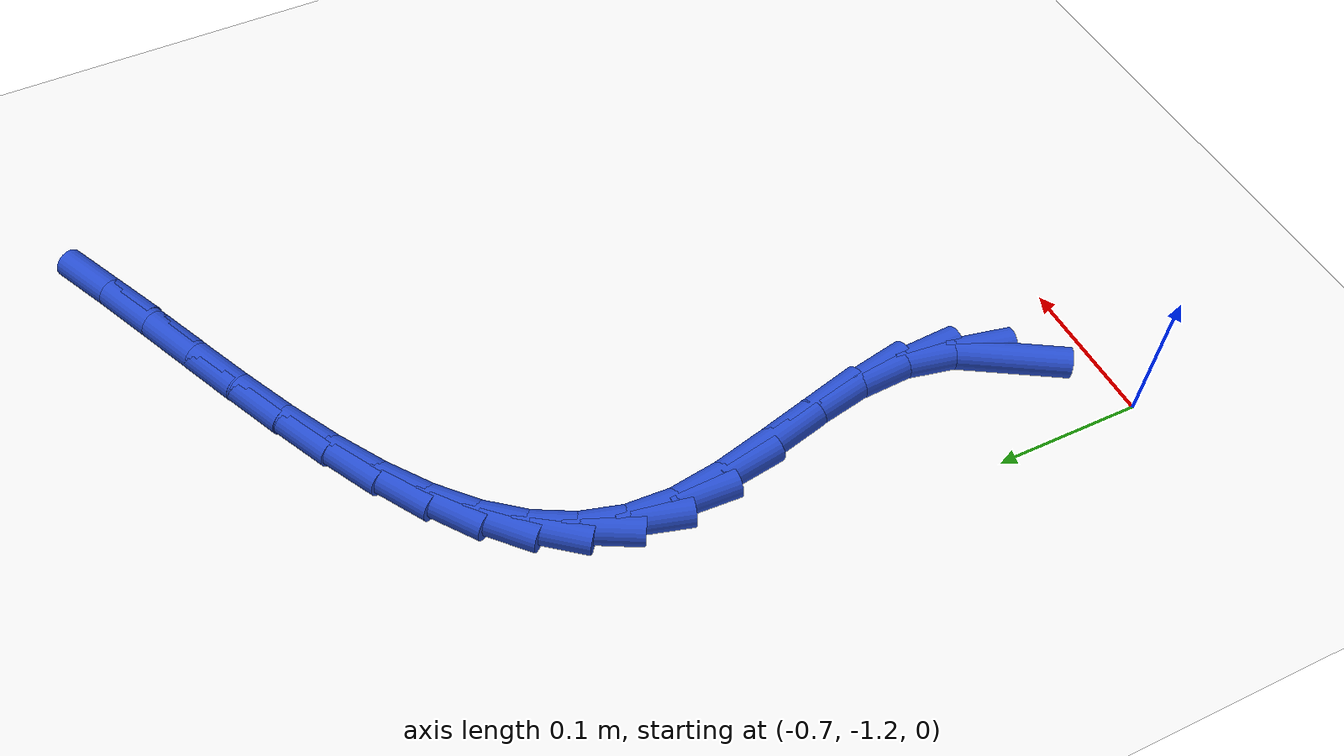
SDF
<sdf version="1.6">
 <world name="default">
  <model name="ground_plane">
   <static>1</static>
   <link name="link">
    <collision name="collision">
     <geometry><plane><normal>0 0 1</normal><size>100 100</size></plane></geometry>
     <surface><friction><ode><mu>100</mu><mu2>50</mu2></ode></friction></surface>
    </collision>
    <visual name="visual">
     <cast_shadows>0</cast_shadows>
     <geometry><plane><normal>0 0 1</normal><size>100 100</size></plane></geometry>
     <material>
      <script><uri>file://media/materials/scripts/gazebo.material</uri><name>Gazebo/WhiteGlow</name></script>
     </material>
    </visual>
   </link>
  </model>
  <model name="line">
   <link name="link_190">
    <pose>-0.6382624683775024 -1.1442281127790899 0.01 0 1.57 1.0272276006651477</pose>
    <collision name="collision">
     <geometry><cylinder><radius>0.01</radius><length>0.08</length></cylinder></geometry>
    </collision>
    <visual name="visual">
     <material>
      <script><name>Gazebo/Blue</name><uri>file://media/materials/scripts/gazebo.material</uri></script>
     </material>
     <geometry><cylinder><radius>0.01</radius><length>0.08</length></cylinder></geometry>
    </visual>
   </link>
   <link name="link_191">
    <pose>-0.6206248557993498 -1.1150408328921637 0.01 0 1.57 1.3618944006648412</pose>
    <collision name="collision">
     <geometry><cylinder><radius>0.01</radius><length>0.08</length></cylinder></geometry>
    </collision>
    <visual name="visual">
     <material>
      <script><name>Gazebo/Blue</name><uri>file://media/materials/scripts/gazebo.material</uri></script>
     </material>
     <geometry><cylinder><radius>0.01</radius><length>0.08</length></cylinder></geometry>
    </visual>
   </link>
   <link name="link_192">
    <pose>-0.6136718146611201 -1.0822426573544506 0.01 0 1.57 -1.5278581862993117</pose>
    <collision name="collision">
     <geometry><cylinder><radius>0.01</radius><length>0.08</length></cylinder></geometry>
    </collision>
    <visual name="visual">
     <material>
      <script><name>Gazebo/Blue</name><uri>file://media/materials/scripts/gazebo.material</uri></script>
     </material>
     <geometry><cylinder><radius>0.01</radius><length>0.08</length></cylinder></geometry>
    </visual>
   </link>
   <link name="link_193">
    <pose>-0.6151903316750111 -1.0468991687949551 0.01 0 1.57 -1.3845350236376937</pose>
    <collision name="collision">
     <geometry><cylinder><radius>0.01</radius><length>0.08</length></cylinder></geometry>
    </collision>
    <visual name="visual">
     <material>
      <script><name>Gazebo/Blue</name><uri>file://media/materials/scripts/gazebo.material</uri></script>
     </material>
     <geometry><cylinder><radius>0.01</radius><length>0.08</length></cylinder></geometry>
    </visual>
   </link>
   <link name="link_194">
    <pose>-0.6221207310766012 -1.0101225156597786 0.01 0 1.57 -1.3256099250226439</pose>
    <collision name="collision">
     <geometry><cylinder><radius>0.01</radius><length>0.08</length></cylinder></geometry>
    </collision>
    <visual name="visual">
     <material>
      <script><name>Gazebo/Blue</name><uri>file://media/materials/scripts/gazebo.material</uri></script>
     </material>
     <geometry><cylinder><radius>0.01</radius><length>0.08</length></cylinder></geometry>
    </visual>
   </link>
   <link name="link_195">
    <pose>-0.6314033371014685 -0.9730248463950224 0.01 0 1.57 -1.3388596592594153</pose>
    <collision name="collision">
     <geometry><cylinder><radius>0.01</radius><length>0.08</length></cylinder></geometry>
    </collision>
    <visual name="visual">
     <material>
      <script><name>Gazebo/Blue</name><uri>file://media/materials/scripts/gazebo.material</uri></script>
     </material>
     <geometry><cylinder><radius>0.01</radius><length>0.08</length></cylinder></geometry>
    </visual>
   </link>
   <link name="link_196">
    <pose>-0.6399784739851909 -0.9367183094467877 0.01 0 1.57 -1.4319416841257835</pose>
    <collision name="collision">
     <geometry><cylinder><radius>0.01</radius><length>0.08</length></cylinder></geometry>
    </collision>
    <visual name="visual">
     <material>
      <script><name>Gazebo/Blue</name><uri>file://media/materials/scripts/gazebo.material</uri></script>
     </material>
     <geometry><cylinder><radius>0.01</radius><length>0.08</length></cylinder></geometry>
    </visual>
   </link>
   <link name="link_197">
    <pose>-0.644786465963347 -0.9023150532611748 0.01 0 1.57 1.5214955904369305</pose>
    <collision name="collision">
     <geometry><cylinder><radius>0.01</radius><length>0.08</length></cylinder></geometry>
    </collision>
    <visual name="visual">
     <material>
      <script><name>Gazebo/Blue</name><uri>file://media/materials/scripts/gazebo.material</uri></script>
     </material>
     <geometry><cylinder><radius>0.01</radius><length>0.08</length></cylinder></geometry>
    </visual>
   </link>
   <link name="link_198">
    <pose>-0.6432289909406026 -0.8707493387030524 0.01 0 1.57 1.2964715134014266</pose>
    <collision name="collision">
     <geometry><cylinder><radius>0.01</radius><length>0.08</length></cylinder></geometry>
    </collision>
    <visual name="visual">
     <material>
      <script><name>Gazebo/Blue</name><uri>file://media/materials/scripts/gazebo.material</uri></script>
     </material>
     <geometry><cylinder><radius>0.01</radius><length>0.08</length></cylinder></geometry>
    </visual>
   </link>
   <link name="link_199">
    <pose>-0.6351429854580974 -0.8420164457695734 0.01 0 1.57 1.080943098901576</pose>
    <collision name="collision">
     <geometry><cylinder><radius>0.01</radius><length>0.08</length></cylinder></geometry>
    </collision>
    <visual name="visual">
     <material>
      <script><name>Gazebo/Blue</name><uri>file://media/materials/scripts/gazebo.material</uri></script>
     </material>
     <geometry><cylinder><radius>0.01</radius><length>0.08</length></cylinder></geometry>
    </visual>
   </link>
   <link name="link_200">
    <pose>-0.6211659686671096 -0.815802967839279 0.01 0 1.57 0.8954485209831213</pose>
    <collision name="collision">
     <geometry><cylinder><radius>0.01</radius><length>0.08</length></cylinder></geometry>
    </collision>
    <visual name="visual">
     <material>
      <script><name>Gazebo/Blue</name><uri>file://media/materials/scripts/gazebo.material</uri></script>
     </material>
     <geometry><cylinder><radius>0.01</radius><length>0.08</length></cylinder></geometry>
    </visual>
   </link>
   <link name="link_201">
    <pose>-0.601935939619335 -0.7917953132519182 0.01 0 1.57 0.7477831495946675</pose>
    <collision name="collision">
     <geometry><cylinder><radius>0.01</radius><length>0.08</length></cylinder></geometry>
    </collision>
    <visual name="visual">
     <material>
      <script><name>Gazebo/Blue</name><uri>file://media/materials/scripts/gazebo.material</uri></script>
     </material>
     <geometry><cylinder><radius>0.01</radius><length>0.08</length></cylinder></geometry>
    </visual>
   </link>
   <link name="link_202">
    <pose>-0.5780908973664716 -0.7696798903472422 0.01 0 1.57 0.6358722887962981</pose>
    <collision name="collision">
     <geometry><cylinder><radius>0.01</radius><length>0.08</length></cylinder></geometry>
    </collision>
    <visual name="visual">
     <material>
      <script><name>Gazebo/Blue</name><uri>file://media/materials/scripts/gazebo.material</uri></script>
     </material>
     <geometry><cylinder><radius>0.01</radius><length>0.08</length></cylinder></geometry>
    </visual>
   </link>
   <link name="link_203">
    <pose>-0.5502688409602166 -0.7491431074650007 0.01 0 1.57 0.5538792740625978</pose>
    <collision name="collision">
     <geometry><cylinder><radius>0.01</radius><length>0.08</length></cylinder></geometry>
    </collision>
    <visual name="visual">
     <material>
      <script><name>Gazebo/Blue</name><uri>file://media/materials/scripts/gazebo.material</uri></script>
     </material>
     <geometry><cylinder><radius>0.01</radius><length>0.08</length></cylinder></geometry>
    </visual>
   </link>
   <link name="link_204">
    <pose>-0.5191077694522664 -0.7298713729449435 0.01 0 1.57 0.49592746983747205</pose>
    <collision name="collision">
     <geometry><cylinder><radius>0.01</radius><length>0.08</length></cylinder></geometry>
    </collision>
    <visual name="visual">
     <material>
      <script><name>Gazebo/Blue</name><uri>file://media/materials/scripts/gazebo.material</uri></script>
     </material>
     <geometry><cylinder><radius>0.01</radius><length>0.08</length></cylinder></geometry>
    </visual>
   </link>
   <link name="link_205">
    <pose>-0.48524568189431855 -0.7115510951268206 0.01 0 1.57 0.4573898710036713</pose>
    <collision name="collision">
     <geometry><cylinder><radius>0.01</radius><length>0.08</length></cylinder></geometry>
    </collision>
    <visual name="visual">
     <material>
      <script><name>Gazebo/Blue</name><uri>file://media/materials/scripts/gazebo.material</uri></script>
     </material>
     <geometry><cylinder><radius>0.01</radius><length>0.08</length></cylinder></geometry>
    </visual>
   </link>
   <link name="link_206">
    <pose>-0.4493205773380689 -0.6938686823503816 0.01 0 1.57 0.43504483234886854</pose>
    <collision name="collision">
     <geometry><cylinder><radius>0.01</radius><length>0.08</length></cylinder></geometry>
    </collision>
    <visual name="visual">
     <material>
      <script><name>Gazebo/Blue</name><uri>file://media/materials/scripts/gazebo.material</uri></script>
     </material>
     <geometry><cylinder><radius>0.01</radius><length>0.08</length></cylinder></geometry>
    </visual>
   </link>
   <link name="link_207">
    <pose>-0.4119704548352167 -0.6765105429553775 0.01 0 1.57 0.4268967840684449</pose>
    <collision name="collision">
     <geometry><cylinder><radius>0.01</radius><length>0.08</length></cylinder></geometry>
    </collision>
    <visual name="visual">
     <material>
      <script><name>Gazebo/Blue</name><uri>file://media/materials/scripts/gazebo.material</uri></script>
     </material>
     <geometry><cylinder><radius>0.01</radius><length>0.08</length></cylinder></geometry>
    </visual>
   </link>
   <link name="link_208">
    <pose>-0.37383331343745807 -0.6591630852815579 0.01 0 1.57 0.43197341709666415</pose>
    <collision name="collision">
     <geometry><cylinder><radius>0.01</radius><length>0.08</length></cylinder></geometry>
    </collision>
    <visual name="visual">
     <material>
      <script><name>Gazebo/Blue</name><uri>file://media/materials/scripts/gazebo.material</uri></script>
     </material>
     <geometry><cylinder><radius>0.01</radius><length>0.08</length></cylinder></geometry>
    </visual>
   </link>
   <link name="link_209">
    <pose>-0.33554715219648984 -0.6415127176686725 0.01 0 1.57 0.45018766112238356</pose>
    <collision name="collision">
     <geometry><cylinder><radius>0.01</radius><length>0.08</length></cylinder></geometry>
    </collision>
    <visual name="visual">
     <material>
      <script><name>Gazebo/Blue</name><uri>file://media/materials/scripts/gazebo.material</uri></script>
     </material>
     <geometry><cylinder><radius>0.01</radius><length>0.08</length></cylinder></geometry>
    </visual>
   </link>
  </model>
 </world>
</sdf>
